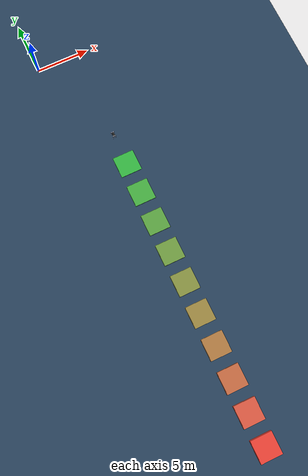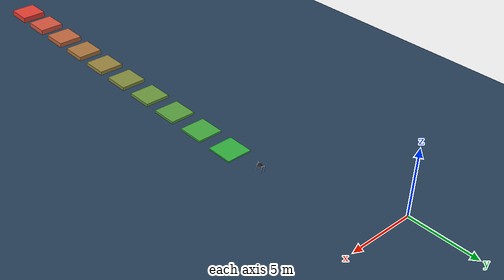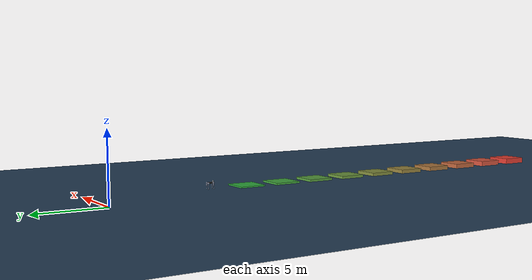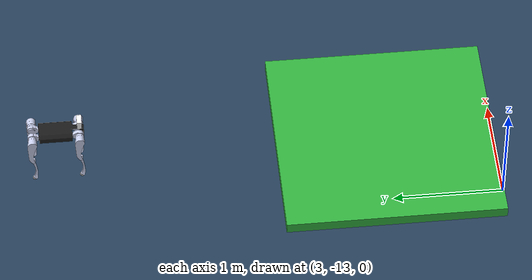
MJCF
<mujoco model="dog terrain scene">
<compiler angle="radian" meshdir="../meshes/"/>
<size njmax="500" nconmax="100"/>
<option gravity="0 0 -9.806" iterations="100" solver="Newton" timestep="0.005" integrator="implicitfast"/>

<default>
  <geom contype="1" conaffinity="1" condim="6" friction="0.6 0.005 0.01" margin="0.001" group="0"/>
  <light castshadow="false" diffuse="1 1 1"/>
  <joint damping="0.01" armature="0.01" frictionloss="0.2"/>
  <camera fovy="60"/>
</default>

<statistic center="3.7 -24.0 0.4" extent="20.0"/>
<visual>
<headlight diffuse="0.6 0.6 0.6" ambient="0.3 0.3 0.3" specular="0 0 0"/>
<rgba haze="0.15 0.25 0.35 1" com="0.502 1.0 0 0.5" contactforce="0.98 0.4 0.4 0.7" contactpoint="1.0 1.0 0.6 0.4"/>
<global azimuth="90" elevation="-20"/>
<scale com="0.2" forcewidth="0.035" contactwidth="0.10" contactheight="0.04"/>
</visual>
<asset>
<texture type="skybox" builtin="gradient" rgb1="0.3 0.5 0.7" rgb2="0 0 0" width="512" height="3072"/>
<texture type="2d" name="groundplane" builtin="checker" mark="edge" rgb1="0.2 0.3 0.4" rgb2="0.1 0.2 0.3" markrgb="0.8 0.8 0.8" width="300" height="300"/>
<material name="groundplane" texture="groundplane" texuniform="true" texrepeat="5 5" reflectance="0.2"/>

<!-- dog meshes -->
<mesh name="base"     file="base.STL"/>
<mesh name="ODIN1"    file="ODIN1.STL"/>
<mesh name="FL_hip"   file="FL_hip.STL"/>
<mesh name="FL_thigh" file="FL_thigh.STL"/>
<mesh name="FL_calf"  file="FL_calf.STL"/>
<mesh name="FL_foot"  file="FL_foot.STL"/>
<mesh name="FR_hip"   file="FR_hip.STL"/>
<mesh name="FR_thigh" file="FR_thigh.STL"/>
<mesh name="FR_calf"  file="FR_calf.STL"/>
<mesh name="FR_foot"  file="FR_foot.STL"/>
<mesh name="RR_hip"   file="RR_hip.STL"/>
<mesh name="RR_thigh" file="RR_thigh.STL"/>
<mesh name="RR_calf"  file="RR_calf.STL"/>
<mesh name="RR_foot"  file="RR_foot.STL"/>
<mesh name="RL_hip"   file="RL_hip.STL"/>
<mesh name="RL_thigh" file="RL_thigh.STL"/>
<mesh name="RL_calf"  file="RL_calf.STL"/>
<mesh name="RL_foot"  file="RR_foot.STL"/>
</asset>
<worldbody>
<light pos="0 0 1.5" dir="0 0 -1" directional="true" />
<camera name="track" mode="trackcom" pos="0 -1.3 1.6" xyaxes="1 0 0 0 0.707 0.707"/>
<geom name="floor" size="0 0 0.05" type="plane" material="groundplane" />

<geom name="platform_01_10cm" pos="3.7 -12.0 0.050000" type="box" size="1.0 1.0 0.050000" rgba="0.20 0.70 0.25 1"/>
<geom name="platform_02_14cm" pos="3.7 -15.0 0.069444" type="box" size="1.0 1.0 0.069444" rgba="0.27 0.67 0.25 1"/>
<geom name="platform_03_18cm" pos="3.7 -18.0 0.088889" type="box" size="1.0 1.0 0.088889" rgba="0.35 0.63 0.25 1"/>
<geom name="platform_04_22cm" pos="3.7 -21.0 0.108333" type="box" size="1.0 1.0 0.108333" rgba="0.43 0.60 0.25 1"/>
<geom name="platform_05_26cm" pos="3.7 -24.0 0.127778" type="box" size="1.0 1.0 0.127778" rgba="0.52 0.56 0.25 1"/>
<geom name="platform_06_29cm" pos="3.7 -27.0 0.147222" type="box" size="1.0 1.0 0.147222" rgba="0.60 0.52 0.25 1"/>
<geom name="platform_07_33cm" pos="3.7 -30.0 0.166667" type="box" size="1.0 1.0 0.166667" rgba="0.68 0.47 0.25 1"/>
<geom name="platform_08_37cm" pos="3.7 -33.0 0.186111" type="box" size="1.0 1.0 0.186111" rgba="0.76 0.41 0.25 1"/>
<geom name="platform_09_41cm" pos="3.7 -36.0 0.205556" type="box" size="1.0 1.0 0.205556" rgba="0.84 0.34 0.25 1"/>
<geom name="platform_10_45cm" pos="3.7 -39.0 0.225000" type="box" size="1.0 1.0 0.225000" rgba="0.90 0.25 0.20 1"/>
<!-- ============ Dog Robot (spawn at red square 3.7, -9.0) ============ -->
<body name="trunk" pos="3.7 -9.0 0.45" quat="-0.7071068 0 0 0.7071068">
  <inertial pos="0.0063754 0 0" quat="1 0 0 0" mass="4.74" diaginertia="0.018108 0.039024 0.048926"/>
  <joint type="free"/>
  <geom type="mesh" mesh="base" contype="0" conaffinity="0" group="1" rgba="0.10196 0.10196 0.10196 1"/>
  <geom size="0.1531 0.04675 0.052" type="box" rgba="0.10196 0.10196 0.10196 0"/>
  <geom type="mesh" mesh="ODIN1" pos="0.21725 0 0.1165" contype="0" conaffinity="0" group="1" rgba="1 1 1 1"/>
  <site name="imu" pos="0 0 0"/>

  <!-- FL Leg -->
  <body name="FL_hip" pos="0.2145 0.05 0">
    <inertial pos="-0.010697 -0.0033174 0" quat="0.483303 0.483303 0.516157 0.516157" mass="0.33292" diaginertia="0.000342408 0.00025417 0.000178192"/>
    <joint name="FL_hip_joint" pos="0 0 0" axis="-1 0 0" range="-1.05 1.05" actuatorfrcrange="-17 17"/>
    <geom type="mesh" mesh="FL_hip" contype="0" conaffinity="0" group="1" rgba="0.79216 0.81961 0.93333 1"/>
    <geom size="0.04 0.02" pos="0 0.045 0" quat="0.707105 0.707108 0 0" type="cylinder" rgba="0.79216 0.81961 0.93333 0"/>
    <body name="FL_thigh" pos="0 0.088 0">
      <inertial pos="-0.0069171 -0.014196 -0.040905" quat="0.937237 -0.0612753 -0.0854854 -0.332451" mass="1.5467" diaginertia="0.00673267 0.0061914 0.00123923"/>
      <joint name="FL_thigh_joint" pos="0 0 0" axis="0 -1 0" range="-1.57 3.49" actuatorfrcrange="-17 17"/>
      <geom type="mesh" mesh="FL_thigh" contype="0" conaffinity="0" group="1" rgba="0.79216 0.81961 0.93333 1"/>
      <geom size="0.075 0.01225 0.017" pos="0 0 -0.075" quat="0.707105 0 0.707108 0" type="box" rgba="0.79216 0.81961 0.93333 0"/>
      <body name="FL_calf" pos="0 0 -0.22">
        <inertial pos="0.011153 4.09347e-10 -0.144935" quat="0.706789 0.0212082 0.0212082 0.706789" mass="0.1266" diaginertia="0.00082574 0.00081761 1.7692e-05"/>
        <joint name="FL_calf_joint" pos="0 0 0" axis="0 1 0" range="-2.72 -1" actuatorfrcrange="-34 34"/>
        <geom type="mesh" mesh="FL_calf" contype="0" conaffinity="0" group="1" rgba="0.79216 0.81961 0.93333 1"/>
        <geom size="0.07 0.008 0.008" pos="0 0 -0.07" quat="0.707105 0 0.707108 0" type="box" rgba="0.79216 0.81961 0.93333 0"/>
        <geom type="mesh" mesh="FL_foot" pos="0.001 0 -0.22349" contype="0" conaffinity="0" group="1" rgba="0.69804 0.69804 0.69804 1"/>
        <geom name="FL_foot_col" size="0.02" pos="0 0 -0.22849" rgba="0.69804 0.69804 0.69804 0"/>
      </body>
    </body>
  </body>

  <!-- FR Leg -->
  <body name="FR_hip" pos="0.2145 -0.05 0">
    <inertial pos="-0.010697 0.0033174 0" quat="0.516157 0.516157 0.483303 0.483303" mass="0.33292" diaginertia="0.000342408 0.00025417 0.000178192"/>
    <joint name="FR_hip_joint" pos="0 0 0" axis="-1 0 0" range="-1.05 1.05" actuatorfrcrange="-17 17"/>
    <geom type="mesh" mesh="FR_hip" contype="0" conaffinity="0" group="1" rgba="0.79216 0.81961 0.93333 1"/>
    <geom size="0.04 0.02" pos="0 -0.045 0" quat="0.707105 0.707108 0 0" type="cylinder" rgba="0.79216 0.81961 0.93333 0"/>
    <body name="FR_thigh" pos="0 -0.088 0">
      <inertial pos="-0.0069171 0.014196 -0.040905" quat="0.937237 0.0612753 -0.0854854 0.332451" mass="1.5467" diaginertia="0.00673267 0.0061914 0.00123923"/>
      <joint name="FR_thigh_joint" pos="0 0 0" axis="0 1 0" range="-1.57 3.49" actuatorfrcrange="-17 17"/>
      <geom type="mesh" mesh="FR_thigh" contype="0" conaffinity="0" group="1" rgba="0.79216 0.81961 0.93333 1"/>
      <geom size="0.075 0.01225 0.017" pos="0 0 -0.075" quat="0.707105 0 0.707108 0" type="box" rgba="0.79216 0.81961 0.93333 0"/>
      <body name="FR_calf" pos="0 0 -0.22">
        <inertial pos="0.011153 4.14072e-10 -0.144935" quat="0.706788 0.0212297 0.0212297 0.706788" mass="0.1266" diaginertia="0.00082574 0.00081755 1.7749e-05"/>
        <joint name="FR_calf_joint" pos="0 0 0" axis="0 -1 0" range="1 2.72" actuatorfrcrange="-34 34"/>
        <geom type="mesh" mesh="FR_calf" contype="0" conaffinity="0" group="1" rgba="0.79216 0.81961 0.93333 1"/>
        <geom size="0.07 0.008 0.008" pos="0 0 -0.07" quat="0.707105 0 0.707108 0" type="box" rgba="0.79216 0.81961 0.93333 0"/>
        <geom type="mesh" mesh="FR_foot" pos="0.001 0 -0.22349" contype="0" conaffinity="0" group="1" rgba="0.69804 0.69804 0.69804 1"/>
        <geom name="FR_foot_col" size="0.02" pos="0 0 -0.22849" rgba="0.69804 0.69804 0.69804 0"/>
      </body>
    </body>
  </body>

  <!-- RR Leg -->
  <body name="RR_hip" pos="-0.2145 -0.05 0">
    <inertial pos="0.010697 0.0033174 0" quat="0.483303 0.483303 0.516157 0.516157" mass="0.33292" diaginertia="0.000342408 0.00025417 0.000178192"/>
    <joint name="RR_hip_joint" pos="0 0 0" axis="1 0 0" range="-1.05 1.05" actuatorfrcrange="-17 17"/>
    <geom type="mesh" mesh="RR_hip" contype="0" conaffinity="0" group="1" rgba="0.79216 0.81961 0.93333 1"/>
    <geom size="0.04 0.02" pos="0 -0.045 0" quat="0.707105 0.707108 0 0" type="cylinder" rgba="0.79216 0.81961 0.93333 0"/>
    <body name="RR_thigh" pos="0 -0.088 0">
      <inertial pos="-0.0069171 0.014196 -0.040905" quat="0.937237 0.0612753 -0.0854854 0.332451" mass="1.5467" diaginertia="0.00673267 0.0061914 0.00123923"/>
      <joint name="RR_thigh_joint" pos="0 0 0" axis="0 1 0" range="-1.57 3.49" actuatorfrcrange="-17 17"/>
      <geom type="mesh" mesh="RR_thigh" contype="0" conaffinity="0" group="1" rgba="0.79216 0.81961 0.93333 1"/>
      <geom size="0.075 0.01225 0.017" pos="0 0 -0.075" quat="0.707105 0 0.707108 0" type="box" rgba="0.79216 0.81961 0.93333 0"/>
      <body name="RR_calf" pos="0 0 -0.22">
        <inertial pos="0.011153 4.14072e-10 -0.144935" quat="0.706788 0.0212297 0.0212297 0.706788" mass="0.1266" diaginertia="0.00082574 0.00081755 1.7749e-05"/>
        <joint name="RR_calf_joint" pos="0 0 0" axis="0 -1 0" range="1 2.72" actuatorfrcrange="-34 34"/>
        <geom type="mesh" mesh="RR_calf" contype="0" conaffinity="0" group="1" rgba="0.79216 0.81961 0.93333 1"/>
        <geom size="0.07 0.008 0.008" pos="0 0 -0.07" quat="0.707105 0 0.707108 0" type="box" rgba="0.79216 0.81961 0.93333 0"/>
        <geom type="mesh" mesh="RR_foot" pos="0.001 0 -0.22349" contype="0" conaffinity="0" group="1" rgba="0.69804 0.69804 0.69804 1"/>
        <geom name="RR_foot_col" size="0.02" pos="0 0 -0.22849" rgba="0.69804 0.69804 0.69804 0"/>
      </body>
    </body>
  </body>

  <!-- RL Leg -->
  <body name="RL_hip" pos="-0.2145 0.05 0">
    <inertial pos="0.010697 -0.0033174 0" quat="0.516157 0.516157 0.483303 0.483303" mass="0.33292" diaginertia="0.000342408 0.00025417 0.000178192"/>
    <joint name="RL_hip_joint" pos="0 0 0" axis="1 0 0" range="-1.05 1.05" actuatorfrcrange="-17 17"/>
    <geom type="mesh" mesh="RL_hip" contype="0" conaffinity="0" group="1" rgba="0.79216 0.81961 0.93333 1"/>
    <geom size="0.04 0.02" pos="0 0.045 0" quat="0.707105 0.707108 0 0" type="cylinder" rgba="0.79216 0.81961 0.93333 0"/>
    <body name="RL_thigh" pos="0 0.088 0">
      <inertial pos="-0.0069171 -0.014196 -0.040905" quat="0.937237 -0.0612753 -0.0854854 -0.332451" mass="1.5467" diaginertia="0.00673267 0.0061914 0.00123923"/>
      <joint name="RL_thigh_joint" pos="0 0 0" axis="0 -1 0" range="-1.57 3.49" actuatorfrcrange="-17 17"/>
      <geom type="mesh" mesh="RL_thigh" contype="0" conaffinity="0" group="1" rgba="0.79216 0.81961 0.93333 1"/>
      <geom size="0.075 0.01225 0.017" pos="0 0 -0.075" quat="0.707105 0 0.707108 0" type="box" rgba="0.79216 0.81961 0.93333 0"/>
      <body name="RL_calf" pos="0 0 -0.22">
        <inertial pos="0.0111521 4.07726e-10 -0.144935" quat="0.706788 0.021234 0.021234 0.706788" mass="0.1266" diaginertia="0.00082574 0.00081756 1.7750e-05"/>
        <joint name="RL_calf_joint" pos="0 0 0" axis="0 1 0" range="-2.72 -1" actuatorfrcrange="-34 34"/>
        <geom type="mesh" mesh="RL_calf" contype="0" conaffinity="0" group="1" rgba="0.79216 0.81961 0.93333 1"/>
        <geom size="0.07 0.008 0.008" pos="0 0 -0.07" quat="0.707105 0 0.707108 0" type="box" rgba="0.79216 0.81961 0.93333 0"/>
        <geom type="mesh" mesh="RL_foot" pos="0.001 0 -0.22349" contype="0" conaffinity="0" group="1" rgba="0.69804 0.69804 0.69804 1"/>
        <geom name="RL_foot_col" size="0.02" pos="0 0 -0.22849" rgba="0.69804 0.69804 0.69804 0"/>
      </body>
    </body>
  </body>

</body><!-- end trunk -->

</worldbody>

<!-- ============ Actuators ============ -->
<actuator>
  <motor name="FL_hip"   gear="1" joint="FL_hip_joint"   ctrlrange="-23.7 23.7"   ctrllimited="true"/>
  <motor name="FL_thigh" gear="1" joint="FL_thigh_joint" ctrlrange="-23.7 23.7"   ctrllimited="true"/>
  <motor name="FL_calf"  gear="1" joint="FL_calf_joint"  ctrlrange="-35.55 35.55" ctrllimited="true"/>
  <motor name="FR_hip"   gear="1" joint="FR_hip_joint"   ctrlrange="-23.7 23.7"   ctrllimited="true"/>
  <motor name="FR_thigh" gear="1" joint="FR_thigh_joint" ctrlrange="-23.7 23.7"   ctrllimited="true"/>
  <motor name="FR_calf"  gear="1" joint="FR_calf_joint"  ctrlrange="-35.55 35.55" ctrllimited="true"/>
  <motor name="RR_hip"   gear="1" joint="RR_hip_joint"   ctrlrange="-23.7 23.7"   ctrllimited="true"/>
  <motor name="RR_thigh" gear="1" joint="RR_thigh_joint" ctrlrange="-23.7 23.7"   ctrllimited="true"/>
  <motor name="RR_calf"  gear="1" joint="RR_calf_joint"  ctrlrange="-35.55 35.55" ctrllimited="true"/>
  <motor name="RL_hip"   gear="1" joint="RL_hip_joint"   ctrlrange="-23.7 23.7"   ctrllimited="true"/>
  <motor name="RL_thigh" gear="1" joint="RL_thigh_joint" ctrlrange="-23.7 23.7"   ctrllimited="true"/>
  <motor name="RL_calf"  gear="1" joint="RL_calf_joint"  ctrlrange="-35.55 35.55" ctrllimited="true"/>
</actuator>

<!-- ============ Sensors ============ -->
<sensor>
  <jointpos name="FL_hip_pos"   joint="FL_hip_joint"/>
  <jointpos name="FL_thigh_pos" joint="FL_thigh_joint"/>
  <jointpos name="FL_calf_pos"  joint="FL_calf_joint"/>
  <jointpos name="FR_hip_pos"   joint="FR_hip_joint"/>
  <jointpos name="FR_thigh_pos" joint="FR_thigh_joint"/>
  <jointpos name="FR_calf_pos"  joint="FR_calf_joint"/>
  <jointpos name="RR_hip_pos"   joint="RR_hip_joint"/>
  <jointpos name="RR_thigh_pos" joint="RR_thigh_joint"/>
  <jointpos name="RR_calf_pos"  joint="RR_calf_joint"/>
  <jointpos name="RL_hip_pos"   joint="RL_hip_joint"/>
  <jointpos name="RL_thigh_pos" joint="RL_thigh_joint"/>
  <jointpos name="RL_calf_pos"  joint="RL_calf_joint"/>

  <jointvel name="FL_hip_vel"   joint="FL_hip_joint"/>
  <jointvel name="FL_thigh_vel" joint="FL_thigh_joint"/>
  <jointvel name="FL_calf_vel"  joint="FL_calf_joint"/>
  <jointvel name="FR_hip_vel"   joint="FR_hip_joint"/>
  <jointvel name="FR_thigh_vel" joint="FR_thigh_joint"/>
  <jointvel name="FR_calf_vel"  joint="FR_calf_joint"/>
  <jointvel name="RR_hip_vel"   joint="RR_hip_joint"/>
  <jointvel name="RR_thigh_vel" joint="RR_thigh_joint"/>
  <jointvel name="RR_calf_vel"  joint="RR_calf_joint"/>
  <jointvel name="RL_hip_vel"   joint="RL_hip_joint"/>
  <jointvel name="RL_thigh_vel" joint="RL_thigh_joint"/>
  <jointvel name="RL_calf_vel"  joint="RL_calf_joint"/>

  <accelerometer name="Body_Acc"  site="imu"/>
  <gyro          name="Body_Gyro" site="imu"/>
  <framepos      name="Body_Pos"  objtype="site" objname="imu"/>
  <framequat     name="Body_Quat" objtype="site" objname="imu"/>
</sensor>

</mujoco>
